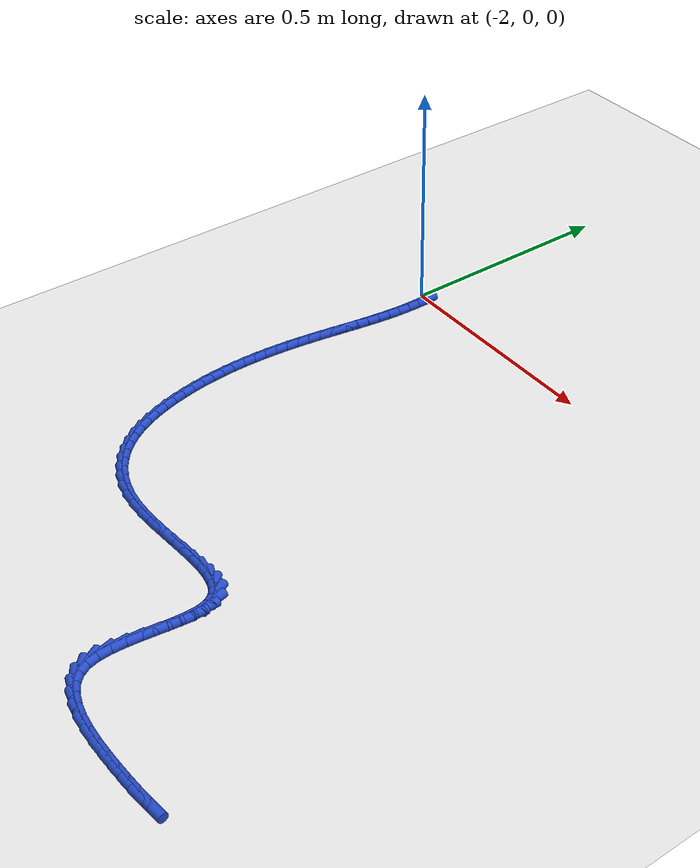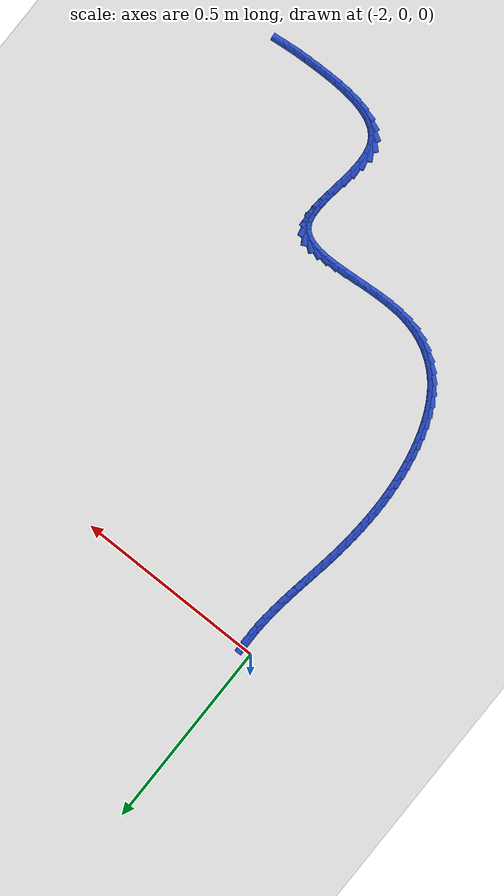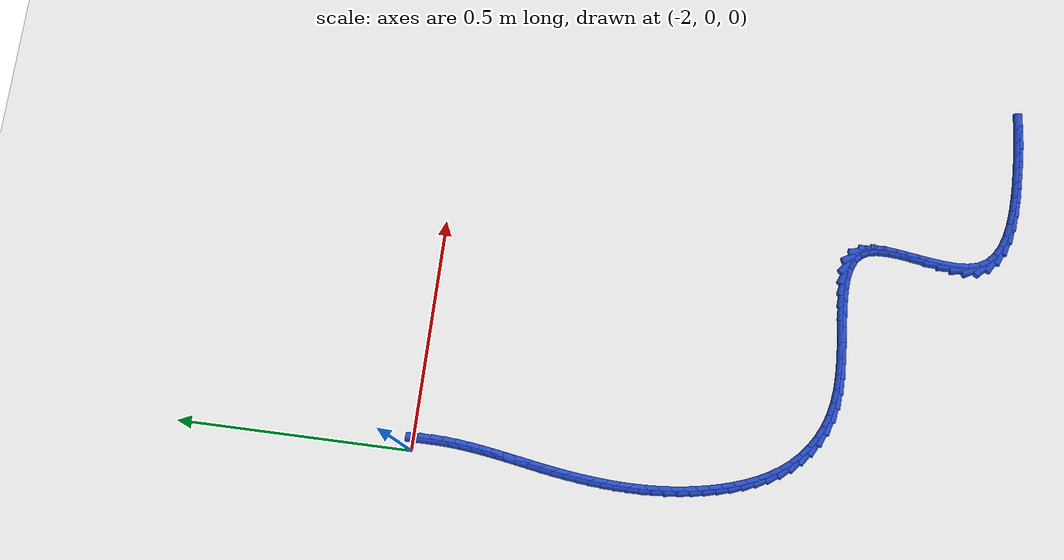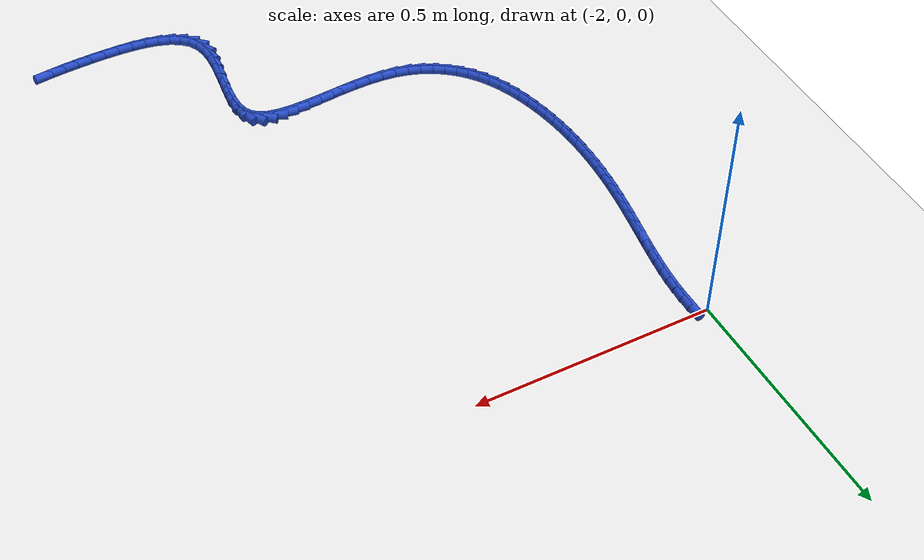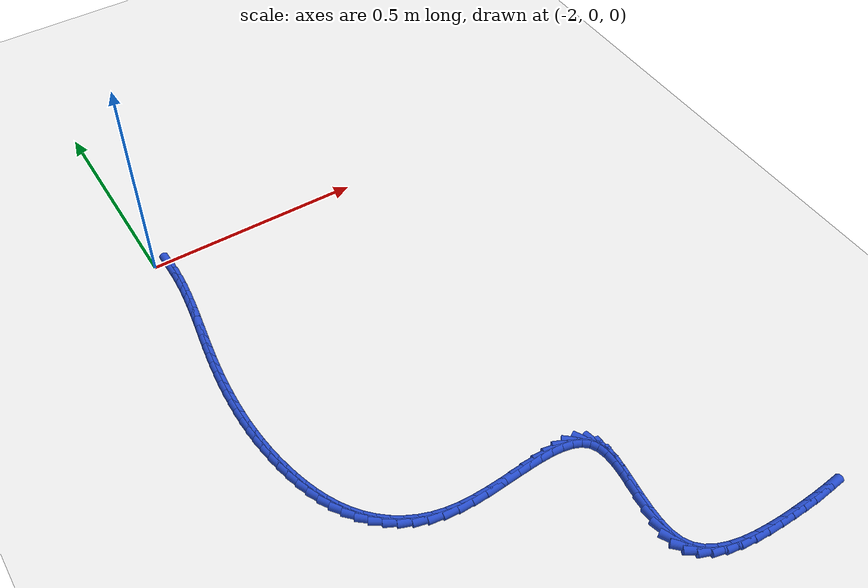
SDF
<sdf version="1.6">
 <world name="default">
  <model name="ground_plane">
   <static>1</static>
   <link name="link">
    <collision name="collision">
     <geometry><plane><normal>0 0 1</normal><size>100 100</size></plane></geometry>
     <surface><friction><ode><mu>100</mu><mu2>50</mu2></ode></friction></surface>
    </collision>
    <visual name="visual">
     <cast_shadows>0</cast_shadows>
     <geometry><plane><normal>0 0 1</normal><size>100 100</size></plane></geometry>
     <material>
      <script><uri>file://media/materials/scripts/gazebo.material</uri><name>Gazebo/WhiteGlow</name></script>
     </material>
    </visual>
   </link>
  </model>
  <model name="line">
   <link name="link_140">
    <pose>-1.97184601671813 -0.02467518650666401 0.01 0 1.57 -1.565386746322637</pose>
    <collision name="collision">
     <geometry><cylinder><radius>0.01</radius><length>0.08</length></cylinder></geometry>
    </collision>
    <visual name="visual">
     <material>
      <script><name>Gazebo/Blue</name><uri>file://media/materials/scripts/gazebo.material</uri></script>
     </material>
     <geometry><cylinder><radius>0.01</radius><length>0.08</length></cylinder></geometry>
    </visual>
   </link>
   <link name="link_141">
    <pose>-1.9717050903130067 -0.050726195669723945 0.01 0 1.57 1.5335723118751314</pose>
    <collision name="collision">
     <geometry><cylinder><radius>0.01</radius><length>0.08</length></cylinder></geometry>
    </collision>
    <visual name="visual">
     <material>
      <script><name>Gazebo/Blue</name><uri>file://media/materials/scripts/gazebo.material</uri></script>
     </material>
     <geometry><cylinder><radius>0.01</radius><length>0.08</length></cylinder></geometry>
    </visual>
   </link>
   <link name="link_142">
    <pose>-1.9726742307537328 -0.07674952439930063 0.01 0 1.57 1.4970642621984154</pose>
    <collision name="collision">
     <geometry><cylinder><radius>0.01</radius><length>0.08</length></cylinder></geometry>
    </collision>
    <visual name="visual">
     <material>
      <script><name>Gazebo/Blue</name><uri>file://media/materials/scripts/gazebo.material</uri></script>
     </material>
     <geometry><cylinder><radius>0.01</radius><length>0.08</length></cylinder></geometry>
    </visual>
   </link>
   <link name="link_143">
    <pose>-1.9745950765183382 -0.10275399983539571 0.01 0 1.57 1.4667591186075828</pose>
    <collision name="collision">
     <geometry><cylinder><radius>0.01</radius><length>0.08</length></cylinder></geometry>
    </collision>
    <visual name="visual">
     <material>
      <script><name>Gazebo/Blue</name><uri>file://media/materials/scripts/gazebo.material</uri></script>
     </material>
     <geometry><cylinder><radius>0.01</radius><length>0.08</length></cylinder></geometry>
    </visual>
   </link>
   <link name="link_144">
    <pose>-1.9773092660848512 -0.12874844911801098 0.01 0 1.57 1.4426545885052735</pose>
    <collision name="collision">
     <geometry><cylinder><radius>0.01</radius><length>0.08</length></cylinder></geometry>
    </collision>
    <visual name="visual">
     <material>
      <script><name>Gazebo/Blue</name><uri>file://media/materials/scripts/gazebo.material</uri></script>
     </material>
     <geometry><cylinder><radius>0.01</radius><length>0.08</length></cylinder></geometry>
    </visual>
   </link>
   <link name="link_145">
    <pose>-1.9806584379313041 -0.15474169938714816 0.01 0 1.57 1.424703732636051</pose>
    <collision name="collision">
     <geometry><cylinder><radius>0.01</radius><length>0.08</length></cylinder></geometry>
    </collision>
    <visual name="visual">
     <material>
      <script><name>Gazebo/Blue</name><uri>file://media/materials/scripts/gazebo.material</uri></script>
     </material>
     <geometry><cylinder><radius>0.01</radius><length>0.08</length></cylinder></geometry>
    </visual>
   </link>
   <link name="link_146">
    <pose>-1.9844842305357258 -0.1807425777828097 0.01 0 1.57 1.4128427615514838</pose>
    <collision name="collision">
     <geometry><cylinder><radius>0.01</radius><length>0.08</length></cylinder></geometry>
    </collision>
    <visual name="visual">
     <material>
      <script><name>Gazebo/Blue</name><uri>file://media/materials/scripts/gazebo.material</uri></script>
     </material>
     <geometry><cylinder><radius>0.01</radius><length>0.08</length></cylinder></geometry>
    </visual>
   </link>
   <link name="link_147">
    <pose>-1.988628282376146 -0.20675991144499578 0.01 0 1.57 1.4070111215344263</pose>
    <collision name="collision">
     <geometry><cylinder><radius>0.01</radius><length>0.08</length></cylinder></geometry>
    </collision>
    <visual name="visual">
     <material>
      <script><name>Gazebo/Blue</name><uri>file://media/materials/scripts/gazebo.material</uri></script>
     </material>
     <geometry><cylinder><radius>0.01</radius><length>0.08</length></cylinder></geometry>
    </visual>
   </link>
   <link name="link_148">
    <pose>-1.9929322319305953 -0.23280252751370883 0.01 0 1.57 1.4071642088068539</pose>
    <collision name="collision">
     <geometry><cylinder><radius>0.01</radius><length>0.08</length></cylinder></geometry>
    </collision>
    <visual name="visual">
     <material>
      <script><name>Gazebo/Blue</name><uri>file://media/materials/scripts/gazebo.material</uri></script>
     </material>
     <geometry><cylinder><radius>0.01</radius><length>0.08</length></cylinder></geometry>
    </visual>
   </link>
   <link name="link_149">
    <pose>-1.997237717677104 -0.25887925312895066 0.01 0 1.57 1.4132792876840292</pose>
    <collision name="collision">
     <geometry><cylinder><radius>0.01</radius><length>0.08</length></cylinder></geometry>
    </collision>
    <visual name="visual">
     <material>
      <script><name>Gazebo/Blue</name><uri>file://media/materials/scripts/gazebo.material</uri></script>
     </material>
     <geometry><cylinder><radius>0.01</radius><length>0.08</length></cylinder></geometry>
    </visual>
   </link>
   <link name="link_150">
    <pose>-2.0013863780937022 -0.284998915430723 0.01 0 1.57 1.4253536692706459</pose>
    <collision name="collision">
     <geometry><cylinder><radius>0.01</radius><length>0.08</length></cylinder></geometry>
    </collision>
    <visual name="visual">
     <material>
      <script><name>Gazebo/Blue</name><uri>file://media/materials/scripts/gazebo.material</uri></script>
     </material>
     <geometry><cylinder><radius>0.01</radius><length>0.08</length></cylinder></geometry>
    </visual>
   </link>
   <link name="link_151">
    <pose>-2.0052198878537806 -0.3111703346462341 0.01 0 1.57 1.442449771148448</pose>
    <collision name="collision">
     <geometry><cylinder><radius>0.01</radius><length>0.08</length></cylinder></geometry>
    </collision>
    <visual name="visual">
     <material>
      <script><name>Gazebo/Blue</name><uri>file://media/materials/scripts/gazebo.material</uri></script>
     </material>
     <geometry><cylinder><radius>0.01</radius><length>0.08</length></cylinder></geometry>
    </visual>
   </link>
   <link name="link_152">
    <pose>-2.008604673623413 -0.33739760372830174 0.01 0 1.57 1.4619829266343736</pose>
    <collision name="collision">
     <geometry><cylinder><radius>0.01</radius><length>0.08</length></cylinder></geometry>
    </collision>
    <visual name="visual">
     <material>
      <script><name>Gazebo/Blue</name><uri>file://media/materials/scripts/gazebo.material</uri></script>
     </material>
     <geometry><cylinder><radius>0.01</radius><length>0.08</length></cylinder></geometry>
    </visual>
   </link>
   <link name="link_153">
    <pose>-2.0114750022144703 -0.3636718591381975 0.01 0 1.57 1.4835368529165842</pose>
    <collision name="collision">
     <geometry><cylinder><radius>0.01</radius><length>0.08</length></cylinder></geometry>
    </collision>
    <visual name="visual">
     <material>
      <script><name>Gazebo/Blue</name><uri>file://media/materials/scripts/gazebo.material</uri></script>
     </material>
     <geometry><cylinder><radius>0.01</radius><length>0.08</length></cylinder></geometry>
    </visual>
   </link>
   <link name="link_154">
    <pose>-2.0137766592665085 -0.3899820374068746 0.01 0 1.57 1.507135787197564</pose>
    <collision name="collision">
     <geometry><cylinder><radius>0.01</radius><length>0.08</length></cylinder></geometry>
    </collision>
    <visual name="visual">
     <material>
      <script><name>Gazebo/Blue</name><uri>file://media/materials/scripts/gazebo.material</uri></script>
     </material>
     <geometry><cylinder><radius>0.01</radius><length>0.08</length></cylinder></geometry>
    </visual>
   </link>
   <link name="link_155">
    <pose>-2.015455430419087 -0.41631707506528703 0.01 0 1.57 1.5327988659167155</pose>
    <collision name="collision">
     <geometry><cylinder><radius>0.01</radius><length>0.08</length></cylinder></geometry>
    </collision>
    <visual name="visual">
     <material>
      <script><name>Gazebo/Blue</name><uri>file://media/materials/scripts/gazebo.material</uri></script>
     </material>
     <geometry><cylinder><radius>0.01</radius><length>0.08</length></cylinder></geometry>
    </visual>
   </link>
   <link name="link_156">
    <pose>-2.016457101311762 -0.4426659086443865 0.01 0 1.57 1.5605370964028638</pose>
    <collision name="collision">
     <geometry><cylinder><radius>0.01</radius><length>0.08</length></cylinder></geometry>
    </collision>
    <visual name="visual">
     <material>
      <script><name>Gazebo/Blue</name><uri>file://media/materials/scripts/gazebo.material</uri></script>
     </material>
     <geometry><cylinder><radius>0.01</radius><length>0.08</length></cylinder></geometry>
    </visual>
   </link>
   <link name="link_157">
    <pose>-2.016727457584091 -0.46901747467512694 0.01 0 1.57 -1.5512426520690388</pose>
    <collision name="collision">
     <geometry><cylinder><radius>0.01</radius><length>0.08</length></cylinder></geometry>
    </collision>
    <visual name="visual">
     <material>
      <script><name>Gazebo/Blue</name><uri>file://media/materials/scripts/gazebo.material</uri></script>
     </material>
     <geometry><cylinder><radius>0.01</radius><length>0.08</length></cylinder></geometry>
    </visual>
   </link>
   <link name="link_158">
    <pose>-2.0162122848756314 -0.4953607096884616 0.01 0 1.57 -1.5193706454360458</pose>
    <collision name="collision">
     <geometry><cylinder><radius>0.01</radius><length>0.08</length></cylinder></geometry>
    </collision>
    <visual name="visual">
     <material>
      <script><name>Gazebo/Blue</name><uri>file://media/materials/scripts/gazebo.material</uri></script>
     </material>
     <geometry><cylinder><radius>0.01</radius><length>0.08</length></cylinder></geometry>
    </visual>
   </link>
   <link name="link_159">
    <pose>-2.014857368825941 -0.5216845502153435 0.01 0 1.57 -1.485473949695687</pose>
    <collision name="collision">
     <geometry><cylinder><radius>0.01</radius><length>0.08</length></cylinder></geometry>
    </collision>
    <visual name="visual">
     <material>
      <script><name>Gazebo/Blue</name><uri>file://media/materials/scripts/gazebo.material</uri></script>
     </material>
     <geometry><cylinder><radius>0.01</radius><length>0.08</length></cylinder></geometry>
    </visual>
   </link>
   <link name="link_160">
    <pose>-2.0126084950745775 -0.5479779327867267 0.01 0 1.57 -1.4496095056385483</pose>
    <collision name="collision">
     <geometry><cylinder><radius>0.01</radius><length>0.08</length></cylinder></geometry>
    </collision>
    <visual name="visual">
     <material>
      <script><name>Gazebo/Blue</name><uri>file://media/materials/scripts/gazebo.material</uri></script>
     </material>
     <geometry><cylinder><radius>0.01</radius><length>0.08</length></cylinder></geometry>
    </visual>
   </link>
   <link name="link_161">
    <pose>-2.009411449261098 -0.5742297939335635 0.01 0 1.57 -1.411860167610317</pose>
    <collision name="collision">
     <geometry><cylinder><radius>0.01</radius><length>0.08</length></cylinder></geometry>
    </collision>
    <visual name="visual">
     <material>
      <script><name>Gazebo/Blue</name><uri>file://media/materials/scripts/gazebo.material</uri></script>
     </material>
     <geometry><cylinder><radius>0.01</radius><length>0.08</length></cylinder></geometry>
    </visual>
   </link>
   <link name="link_162">
    <pose>-2.005212017025061 -0.6004290701868077 0.01 0 1.57 -1.3723374791234868</pose>
    <collision name="collision">
     <geometry><cylinder><radius>0.01</radius><length>0.08</length></cylinder></geometry>
    </collision>
    <visual name="visual">
     <material>
      <script><name>Gazebo/Blue</name><uri>file://media/materials/scripts/gazebo.material</uri></script>
     </material>
     <geometry><cylinder><radius>0.01</radius><length>0.08</length></cylinder></geometry>
    </visual>
   </link>
   <link name="link_163">
    <pose>-1.9999559840060224 -0.626564698077412 0.01 0 1.57 -1.3309875603777912</pose>
    <collision name="collision">
     <geometry><cylinder><radius>0.01</radius><length>0.08</length></cylinder></geometry>
    </collision>
    <visual name="visual">
     <material>
      <script><name>Gazebo/Blue</name><uri>file://media/materials/scripts/gazebo.material</uri></script>
     </material>
     <geometry><cylinder><radius>0.01</radius><length>0.08</length></cylinder></geometry>
    </visual>
   </link>
   <link name="link_164">
    <pose>-1.9935859384396812 -0.6526165596473026 0.01 0 1.57 -1.2846567753725986</pose>
    <collision name="collision">
     <geometry><cylinder><radius>0.01</radius><length>0.08</length></cylinder></geometry>
    </collision>
    <visual name="visual">
     <material>
      <script><name>Gazebo/Blue</name><uri>file://media/materials/scripts/gazebo.material</uri></script>
     </material>
     <geometry><cylinder><radius>0.01</radius><length>0.08</length></cylinder></geometry>
    </visual>
   </link>
   <link name="link_165">
    <pose>-1.985993860752754 -0.6784212244663334 0.01 0 1.57 -1.2300850295755406</pose>
    <collision name="collision">
     <geometry><cylinder><radius>0.01</radius><length>0.08</length></cylinder></geometry>
    </collision>
    <visual name="visual">
     <material>
      <script><name>Gazebo/Blue</name><uri>file://media/materials/scripts/gazebo.material</uri></script>
     </material>
     <geometry><cylinder><radius>0.01</radius><length>0.08</length></cylinder></geometry>
    </visual>
   </link>
   <link name="link_166">
    <pose>-1.9770313088610194 -0.703700792616638 0.01 0 1.57 -1.1661114726849406</pose>
    <collision name="collision">
     <geometry><cylinder><radius>0.01</radius><length>0.08</length></cylinder></geometry>
    </collision>
    <visual name="visual">
     <material>
      <script><name>Gazebo/Blue</name><uri>file://media/materials/scripts/gazebo.material</uri></script>
     </material>
     <geometry><cylinder><radius>0.01</radius><length>0.08</length></cylinder></geometry>
    </visual>
   </link>
   <link name="link_167">
    <pose>-1.9665487126373402 -0.7281741697599116 0.01 0 1.57 -1.0915651001920899</pose>
    <collision name="collision">
     <geometry><cylinder><radius>0.01</radius><length>0.08</length></cylinder></geometry>
    </collision>
    <visual name="visual">
     <material>
      <script><name>Gazebo/Blue</name><uri>file://media/materials/scripts/gazebo.material</uri></script>
     </material>
     <geometry><cylinder><radius>0.01</radius><length>0.08</length></cylinder></geometry>
    </visual>
   </link>
   <link name="link_168">
    <pose>-1.9543965019545784 -0.7515602615578494 0.01 0 1.57 -1.0053572374020723</pose>
    <collision name="collision">
     <geometry><cylinder><radius>0.01</radius><length>0.08</length></cylinder></geometry>
    </collision>
    <visual name="visual">
     <material>
      <script><name>Gazebo/Blue</name><uri>file://media/materials/scripts/gazebo.material</uri></script>
     </material>
     <geometry><cylinder><radius>0.01</radius><length>0.08</length></cylinder></geometry>
    </visual>
   </link>
   <link name="link_169">
    <pose>-1.9404251066855964 -0.7735779736721469 0.01 0 1.57 -0.9067758279468995</pose>
    <collision name="collision">
     <geometry><cylinder><radius>0.01</radius><length>0.08</length></cylinder></geometry>
    </collision>
    <visual name="visual">
     <material>
      <script><name>Gazebo/Blue</name><uri>file://media/materials/scripts/gazebo.material</uri></script>
     </material>
     <geometry><cylinder><radius>0.01</radius><length>0.08</length></cylinder></geometry>
    </visual>
   </link>
   <link name="link_170">
    <pose>-1.9244853792126435 -0.7939464802393644 0.01 0 1.57 -0.7983684018012803</pose>
    <collision name="collision">
     <geometry><cylinder><radius>0.01</radius><length>0.08</length></cylinder></geometry>
    </collision>
    <visual name="visual">
     <material>
      <script><name>Gazebo/Blue</name><uri>file://media/materials/scripts/gazebo.material</uri></script>
     </material>
     <geometry><cylinder><radius>0.01</radius><length>0.08</length></cylinder></geometry>
    </visual>
   </link>
   <link name="link_171">
    <pose>-1.9064843350287477 -0.8124206430850178 0.01 0 1.57 -0.6859267450215684</pose>
    <collision name="collision">
     <geometry><cylinder><radius>0.01</radius><length>0.08</length></cylinder></geometry>
    </collision>
    <visual name="visual">
     <material>
      <script><name>Gazebo/Blue</name><uri>file://media/materials/scripts/gazebo.material</uri></script>
     </material>
     <geometry><cylinder><radius>0.01</radius><length>0.08</length></cylinder></geometry>
    </visual>
   </link>
   <link name="link_172">
    <pose>-1.8864408881244359 -0.8288264276241115 0.01 0 1.57 -0.571158858641088</pose>
    <collision name="collision">
     <geometry><cylinder><radius>0.01</radius><length>0.08</length></cylinder></geometry>
    </collision>
    <visual name="visual">
     <material>
      <script><name>Gazebo/Blue</name><uri>file://media/materials/scripts/gazebo.material</uri></script>
     </material>
     <geometry><cylinder><radius>0.01</radius><length>0.08</length></cylinder></geometry>
    </visual>
   </link>
   <link name="link_173">
    <pose>-1.8643872116258893 -0.8429982245155969 0.01 0 1.57 -0.45550326266334507</pose>
    <collision name="collision">
     <geometry><cylinder><radius>0.01</radius><length>0.08</length></cylinder></geometry>
    </collision>
    <visual name="visual">
     <material>
      <script><name>Gazebo/Blue</name><uri>file://media/materials/scripts/gazebo.material</uri></script>
     </material>
     <geometry><cylinder><radius>0.01</radius><length>0.08</length></cylinder></geometry>
    </visual>
   </link>
   <link name="link_174">
    <pose>-1.8403554786592902 -0.8547704244184233 0.01 0 1.57 -0.3406072516246065</pose>
    <collision name="collision">
     <geometry><cylinder><radius>0.01</radius><length>0.08</length></cylinder></geometry>
    </collision>
    <visual name="visual">
     <material>
      <script><name>Gazebo/Blue</name><uri>file://media/materials/scripts/gazebo.material</uri></script>
     </material>
     <geometry><cylinder><radius>0.01</radius><length>0.08</length></cylinder></geometry>
    </visual>
   </link>
   <link name="link_175">
    <pose>-1.8143778623508204 -0.8639774179915426 0.01 0 1.57 -0.22815044888521863</pose>
    <collision name="collision">
     <geometry><cylinder><radius>0.01</radius><length>0.08</length></cylinder></geometry>
    </collision>
    <visual name="visual">
     <material>
      <script><name>Gazebo/Blue</name><uri>file://media/materials/scripts/gazebo.material</uri></script>
     </material>
     <geometry><cylinder><radius>0.01</radius><length>0.08</length></cylinder></geometry>
    </visual>
   </link>
   <link name="link_176">
    <pose>-1.786486535826663 -0.8704535958939057 0.01 0 1.57 -0.1213918676516014</pose>
    <collision name="collision">
     <geometry><cylinder><radius>0.01</radius><length>0.08</length></cylinder></geometry>
    </collision>
    <visual name="visual">
     <material>
      <script><name>Gazebo/Blue</name><uri>file://media/materials/scripts/gazebo.material</uri></script>
     </material>
     <geometry><cylinder><radius>0.01</radius><length>0.08</length></cylinder></geometry>
    </visual>
   </link>
   <link name="link_177">
    <pose>-1.7567462344341889 -0.8740816652154679 0.01 0 1.57 -0.03660900603013701</pose>
    <collision name="collision">
     <geometry><cylinder><radius>0.01</radius><length>0.08</length></cylinder></geometry>
    </collision>
    <visual name="visual">
     <material>
      <script><name>Gazebo/Blue</name><uri>file://media/materials/scripts/gazebo.material</uri></script>
     </material>
     <geometry><cylinder><radius>0.01</radius><length>0.08</length></cylinder></geometry>
    </visual>
   </link>
   <link name="link_178">
    <pose>-1.7255452372508406 -0.8752244132661244 0.01 0 1.57 0.02196282511192137</pose>
    <collision name="collision">
     <geometry><cylinder><radius>0.01</radius><length>0.08</length></cylinder></geometry>
    </collision>
    <visual name="visual">
     <material>
      <script><name>Gazebo/Blue</name><uri>file://media/materials/scripts/gazebo.material</uri></script>
     </material>
     <geometry><cylinder><radius>0.01</radius><length>0.08</length></cylinder></geometry>
    </visual>
   </link>
   <link name="link_179">
    <pose>-1.6934571064880537 -0.8745195539250481 0.01 0 1.57 0.05892973342801497</pose>
    <collision name="collision">
     <geometry><cylinder><radius>0.01</radius><length>0.08</length></cylinder></geometry>
    </collision>
    <visual name="visual">
     <material>
      <script><name>Gazebo/Blue</name><uri>file://media/materials/scripts/gazebo.material</uri></script>
     </material>
     <geometry><cylinder><radius>0.01</radius><length>0.08</length></cylinder></geometry>
    </visual>
   </link>
   <link name="link_180">
    <pose>-1.6610575911701617 -0.8726080459051682 0.01 0 1.57 0.07693471231629573</pose>
    <collision name="collision">
     <geometry><cylinder><radius>0.01</radius><length>0.08</length></cylinder></geometry>
    </collision>
    <visual name="visual">
     <material>
      <script><name>Gazebo/Blue</name><uri>file://media/materials/scripts/gazebo.material</uri></script>
     </material>
     <geometry><cylinder><radius>0.01</radius><length>0.08</length></cylinder></geometry>
    </visual>
   </link>
   <link name="link_181">
    <pose>-1.628922440321497 -0.8701308479194125 0.01 0 1.57 0.07660094587536298</pose>
    <collision name="collision">
     <geometry><cylinder><radius>0.01</radius><length>0.08</length></cylinder></geometry>
    </collision>
    <visual name="visual">
     <material>
      <script><name>Gazebo/Blue</name><uri>file://media/materials/scripts/gazebo.material</uri></script>
     </material>
     <geometry><cylinder><radius>0.01</radius><length>0.08</length></cylinder></geometry>
    </visual>
   </link>
   <link name="link_182">
    <pose>-1.5976274029663953 -0.8677289186807103 0.01 0 1.57 0.05635753721281717</pose>
    <collision name="collision">
     <geometry><cylinder><radius>0.01</radius><length>0.08</length></cylinder></geometry>
    </collision>
    <visual name="visual">
     <material>
      <script><name>Gazebo/Blue</name><uri>file://media/materials/scripts/gazebo.material</uri></script>
     </material>
     <geometry><cylinder><radius>0.01</radius><length>0.08</length></cylinder></geometry>
    </visual>
   </link>
   <link name="link_183">
    <pose>-1.5677482281291888 -0.86604321690199 0.01 0 1.57 0.01177945909898733</pose>
    <collision name="collision">
     <geometry><cylinder><radius>0.01</radius><length>0.08</length></cylinder></geometry>
    </collision>
    <visual name="visual">
     <material>
      <script><name>Gazebo/Blue</name><uri>file://media/materials/scripts/gazebo.material</uri></script>
     </material>
     <geometry><cylinder><radius>0.01</radius><length>0.08</length></cylinder></geometry>
    </visual>
   </link>
   <link name="link_184">
    <pose>-1.5398606648342106 -0.8657147012961797 0.01 0 1.57 -0.06584527193717934</pose>
    <collision name="collision">
     <geometry><cylinder><radius>0.01</radius><length>0.08</length></cylinder></geometry>
    </collision>
    <visual name="visual">
     <material>
      <script><name>Gazebo/Blue</name><uri>file://media/materials/scripts/gazebo.material</uri></script>
     </material>
     <geometry><cylinder><radius>0.01</radius><length>0.08</length></cylinder></geometry>
    </visual>
   </link>
   <link name="link_185">
    <pose>-1.5145404621057936 -0.8673843305762079 0.01 0 1.57 -0.19189682495455526</pose>
    <collision name="collision">
     <geometry><cylinder><radius>0.01</radius><length>0.08</length></cylinder></geometry>
    </collision>
    <visual name="visual">
     <material>
      <script><name>Gazebo/Blue</name><uri>file://media/materials/scripts/gazebo.material</uri></script>
     </material>
     <geometry><cylinder><radius>0.01</radius><length>0.08</length></cylinder></geometry>
    </visual>
   </link>
   <link name="link_186">
    <pose>-1.4923633689682718 -0.8716930634550034 0.01 0 1.57 -0.39006706779144695</pose>
    <collision name="collision">
     <geometry><cylinder><radius>0.01</radius><length>0.08</length></cylinder></geometry>
    </collision>
    <visual name="visual">
     <material>
      <script><name>Gazebo/Blue</name><uri>file://media/materials/scripts/gazebo.material</uri></script>
     </material>
     <geometry><cylinder><radius>0.01</radius><length>0.08</length></cylinder></geometry>
    </visual>
   </link>
   <link name="link_187">
    <pose>-1.4739051344459781 -0.8792818586454942 0.01 0 1.57 -0.6823960507227023</pose>
    <collision name="collision">
     <geometry><cylinder><radius>0.01</radius><length>0.08</length></cylinder></geometry>
    </collision>
    <visual name="visual">
     <material>
      <script><name>Gazebo/Blue</name><uri>file://media/materials/scripts/gazebo.material</uri></script>
     </material>
     <geometry><cylinder><radius>0.01</radius><length>0.08</length></cylinder></geometry>
    </visual>
   </link>
   <link name="link_188">
    <pose>-1.459741507563246 -0.8907916748606095 0.01 0 1.57 -1.0461431056102912</pose>
    <collision name="collision">
     <geometry><cylinder><radius>0.01</radius><length>0.08</length></cylinder></geometry>
    </collision>
    <visual name="visual">
     <material>
      <script><name>Gazebo/Blue</name><uri>file://media/materials/scripts/gazebo.material</uri></script>
     </material>
     <geometry><cylinder><radius>0.01</radius><length>0.08</length></cylinder></geometry>
    </visual>
   </link>
   <link name="link_189">
    <pose>-1.4504428041429145 -0.9068583532063617 0.01 0 1.57 -1.360503928044224</pose>
    <collision name="collision">
     <geometry><cylinder><radius>0.01</radius><length>0.08</length></cylinder></geometry>
    </collision>
    <visual name="visual">
     <material>
      <script><name>Gazebo/Blue</name><uri>file://media/materials/scripts/gazebo.material</uri></script>
     </material>
     <geometry><cylinder><radius>0.01</radius><length>0.08</length></cylinder></geometry>
    </visual>
   </link>
   <link name="link_190">
    <pose>-1.4460179049349005 -0.9275889114025934 0.01 0 1.57 -1.5469648542842738</pose>
    <collision name="collision">
     <geometry><cylinder><radius>0.01</radius><length>0.08</length></cylinder></geometry>
    </collision>
    <visual name="visual">
     <material>
      <script><name>Gazebo/Blue</name><uri>file://media/materials/scripts/gazebo.material</uri></script>
     </material>
     <geometry><cylinder><radius>0.01</radius><length>0.08</length></cylinder></geometry>
    </visual>
   </link>
   <link name="link_191">
    <pose>-1.4454334523662413 -0.9521086686154151 0.01 0 1.57 1.4937615455471625</pose>
    <collision name="collision">
     <geometry><cylinder><radius>0.01</radius><length>0.08</length></cylinder></geometry>
    </collision>
    <visual name="visual">
     <material>
      <script><name>Gazebo/Blue</name><uri>file://media/materials/scripts/gazebo.material</uri></script>
     </material>
     <geometry><cylinder><radius>0.01</radius><length>0.08</length></cylinder></geometry>
    </visual>
   </link>
   <link name="link_192">
    <pose>-1.4475427996862456 -0.9794362353825103 0.01 0 1.57 1.4460275644101854</pose>
    <collision name="collision">
     <geometry><cylinder><radius>0.01</radius><length>0.08</length></cylinder></geometry>
    </collision>
    <visual name="visual">
     <material>
      <script><name>Gazebo/Blue</name><uri>file://media/materials/scripts/gazebo.material</uri></script>
     </material>
     <geometry><cylinder><radius>0.01</radius><length>0.08</length></cylinder></geometry>
    </visual>
   </link>
   <link name="link_193">
    <pose>-1.4511993001442227 -1.0085902222415628 0.01 0 1.57 1.436373875362712</pose>
    <collision name="collision">
     <geometry><cylinder><radius>0.01</radius><length>0.08</length></cylinder></geometry>
    </collision>
    <visual name="visual">
     <material>
      <script><name>Gazebo/Blue</name><uri>file://media/materials/scripts/gazebo.material</uri></script>
     </material>
     <geometry><cylinder><radius>0.01</radius><length>0.08</length></cylinder></geometry>
    </visual>
   </link>
   <link name="link_194">
    <pose>-1.4552563069894804 -1.0385892397302552 0.01 0 1.57 1.460377497120308</pose>
    <collision name="collision">
     <geometry><cylinder><radius>0.01</radius><length>0.08</length></cylinder></geometry>
    </collision>
    <visual name="visual">
     <material>
      <script><name>Gazebo/Blue</name><uri>file://media/materials/scripts/gazebo.material</uri></script>
     </material>
     <geometry><cylinder><radius>0.01</radius><length>0.08</length></cylinder></geometry>
    </visual>
   </link>
   <link name="link_195">
    <pose>-1.4585671734713281 -1.068451898386271 0.01 0 1.57 1.5215030570784114</pose>
    <collision name="collision">
     <geometry><cylinder><radius>0.01</radius><length>0.08</length></cylinder></geometry>
    </collision>
    <visual name="visual">
     <material>
      <script><name>Gazebo/Blue</name><uri>file://media/materials/scripts/gazebo.material</uri></script>
     </material>
     <geometry><cylinder><radius>0.01</radius><length>0.08</length></cylinder></geometry>
    </visual>
   </link>
   <link name="link_196">
    <pose>-1.459985252839074 -1.097196808747293 0.01 0 1.57 -1.5100227882127888</pose>
    <collision name="collision">
     <geometry><cylinder><radius>0.01</radius><length>0.08</length></cylinder></geometry>
    </collision>
    <visual name="visual">
     <material>
      <script><name>Gazebo/Blue</name><uri>file://media/materials/scripts/gazebo.material</uri></script>
     </material>
     <geometry><cylinder><radius>0.01</radius><length>0.08</length></cylinder></geometry>
    </visual>
   </link>
   <link name="link_197">
    <pose>-1.4583638983420268 -1.1238425813510045 0.01 0 1.57 -1.329170406602036</pose>
    <collision name="collision">
     <geometry><cylinder><radius>0.01</radius><length>0.08</length></cylinder></geometry>
    </collision>
    <visual name="visual">
     <material>
      <script><name>Gazebo/Blue</name><uri>file://media/materials/scripts/gazebo.material</uri></script>
     </material>
     <geometry><cylinder><radius>0.01</radius><length>0.08</length></cylinder></geometry>
    </visual>
   </link>
   <link name="link_198">
    <pose>-1.452556463229496 -1.1474078267350891 0.01 0 1.57 -1.0569287655589545</pose>
    <collision name="collision">
     <geometry><cylinder><radius>0.01</radius><length>0.08</length></cylinder></geometry>
    </collision>
    <visual name="visual">
     <material>
      <script><name>Gazebo/Blue</name><uri>file://media/materials/scripts/gazebo.material</uri></script>
     </material>
     <geometry><cylinder><radius>0.01</radius><length>0.08</length></cylinder></geometry>
    </visual>
   </link>
   <link name="link_199">
    <pose>-1.4415087415201522 -1.166980459496285 0.01 0 1.57 -0.7613413178592309</pose>
    <collision name="collision">
     <geometry><cylinder><radius>0.01</radius><length>0.08</length></cylinder></geometry>
    </collision>
    <visual name="visual">
     <material>
      <script><name>Gazebo/Blue</name><uri>file://media/materials/scripts/gazebo.material</uri></script>
     </material>
     <geometry><cylinder><radius>0.01</radius><length>0.08</length></cylinder></geometry>
    </visual>
   </link>
   <link name="link_200">
    <pose>-1.4252585027635454 -1.1824670626305576 0.01 0 1.57 -0.5195745410255893</pose>
    <collision name="collision">
     <geometry><cylinder><radius>0.01</radius><length>0.08</length></cylinder></geometry>
    </collision>
    <visual name="visual">
     <material>
      <script><name>Gazebo/Blue</name><uri>file://media/materials/scripts/gazebo.material</uri></script>
     </material>
     <geometry><cylinder><radius>0.01</radius><length>0.08</length></cylinder></geometry>
    </visual>
   </link>
   <link name="link_201">
    <pose>-1.404556344551913 -1.1943086356808876 0.01 0 1.57 -0.3406797934323175</pose>
    <collision name="collision">
     <geometry><cylinder><radius>0.01</radius><length>0.08</length></cylinder></geometry>
    </collision>
    <visual name="visual">
     <material>
      <script><name>Gazebo/Blue</name><uri>file://media/materials/scripts/gazebo.material</uri></script>
     </material>
     <geometry><cylinder><radius>0.01</radius><length>0.08</length></cylinder></geometry>
    </visual>
   </link>
   <link name="link_202">
    <pose>-1.3801651247540034 -1.2029553698806008 0.01 0 1.57 -0.21278505043413434</pose>
    <collision name="collision">
     <geometry><cylinder><radius>0.01</radius><length>0.08</length></cylinder></geometry>
    </collision>
    <visual name="visual">
     <material>
      <script><name>Gazebo/Blue</name><uri>file://media/materials/scripts/gazebo.material</uri></script>
     </material>
     <geometry><cylinder><radius>0.01</radius><length>0.08</length></cylinder></geometry>
    </visual>
   </link>
   <link name="link_203">
    <pose>-1.3528477012385656 -1.2088574564630226 0.01 0 1.57 -0.12176691103580768</pose>
    <collision name="collision">
     <geometry><cylinder><radius>0.01</radius><length>0.08</length></cylinder></geometry>
    </collision>
    <visual name="visual">
     <material>
      <script><name>Gazebo/Blue</name><uri>file://media/materials/scripts/gazebo.material</uri></script>
     </material>
     <geometry><cylinder><radius>0.01</radius><length>0.08</length></cylinder></geometry>
    </visual>
   </link>
   <link name="link_204">
    <pose>-1.323366931874347 -1.212465086661479 0.01 0 1.57 -0.0570395252850748</pose>
    <collision name="collision">
     <geometry><cylinder><radius>0.01</radius><length>0.08</length></cylinder></geometry>
    </collision>
    <visual name="visual">
     <material>
      <script><name>Gazebo/Blue</name><uri>file://media/materials/scripts/gazebo.material</uri></script>
     </material>
     <geometry><cylinder><radius>0.01</radius><length>0.08</length></cylinder></geometry>
    </visual>
   </link>
   <link name="link_205">
    <pose>-1.292485674530097 -1.214228451709295 0.01 0 1.57 -0.011715966627662354</pose>
    <collision name="collision">
     <geometry><cylinder><radius>0.01</radius><length>0.08</length></cylinder></geometry>
    </collision>
    <visual name="visual">
     <material>
      <script><name>Gazebo/Blue</name><uri>file://media/materials/scripts/gazebo.material</uri></script>
     </material>
     <geometry><cylinder><radius>0.01</radius><length>0.08</length></cylinder></geometry>
    </visual>
   </link>
   <link name="link_206">
    <pose>-1.2609667870745636 -1.2145977428397967 0.01 0 1.57 0.0183008806195864</pose>
    <collision name="collision">
     <geometry><cylinder><radius>0.01</radius><length>0.08</length></cylinder></geometry>
    </collision>
    <visual name="visual">
     <material>
      <script><name>Gazebo/Blue</name><uri>file://media/materials/scripts/gazebo.material</uri></script>
     </material>
     <geometry><cylinder><radius>0.01</radius><length>0.08</length></cylinder></geometry>
    </visual>
   </link>
   <link name="link_207">
    <pose>-1.2295731207932792 -1.214023146951227 0.01 0 1.57 0.0379656980714169</pose>
    <collision name="collision">
     <geometry><cylinder><radius>0.01</radius><length>0.08</length></cylinder></geometry>
    </collision>
    <visual name="visual">
     <material>
      <script><name>Gazebo/Blue</name><uri>file://media/materials/scripts/gazebo.material</uri></script>
     </material>
     <geometry><cylinder><radius>0.01</radius><length>0.08</length></cylinder></geometry>
    </visual>
   </link>
   <link name="link_208">
    <pose>-1.1989217996479358 -1.2128588887083347 0.01 0 1.57 0.05840821223304503</pose>
    <collision name="collision">
     <geometry><cylinder><radius>0.01</radius><length>0.08</length></cylinder></geometry>
    </collision>
    <visual name="visual">
     <material>
      <script><name>Gazebo/Blue</name><uri>file://media/materials/scripts/gazebo.material</uri></script>
     </material>
     <geometry><cylinder><radius>0.01</radius><length>0.08</length></cylinder></geometry>
    </visual>
   </link>
   <link name="link_209">
    <pose>-1.1691080792895538 -1.2111155396615378 0.01 0 1.57 0.08219233746033665</pose>
    <collision name="collision">
     <geometry><cylinder><radius>0.01</radius><length>0.08</length></cylinder></geometry>
    </collision>
    <visual name="visual">
     <material>
      <script><name>Gazebo/Blue</name><uri>file://media/materials/scripts/gazebo.material</uri></script>
     </material>
     <geometry><cylinder><radius>0.01</radius><length>0.08</length></cylinder></geometry>
    </visual>
   </link>
   <link name="link_210">
    <pose>-1.1401104402966262 -1.2087267743423527 0.01 0 1.57 0.10949536594136142</pose>
    <collision name="collision">
     <geometry><cylinder><radius>0.01</radius><length>0.08</length></cylinder></geometry>
    </collision>
    <visual name="visual">
     <material>
      <script><name>Gazebo/Blue</name><uri>file://media/materials/scripts/gazebo.material</uri></script>
     </material>
     <geometry><cylinder><radius>0.01</radius><length>0.08</length></cylinder></geometry>
    </visual>
   </link>
  </model>
 </world>
</sdf>
